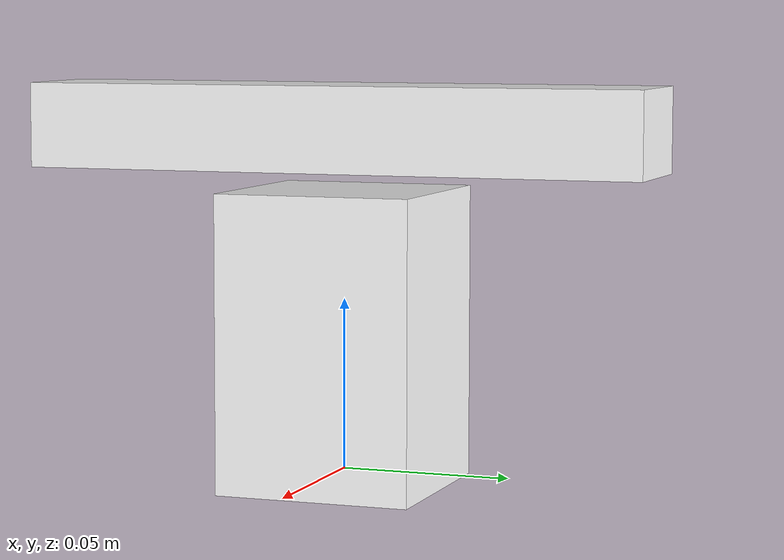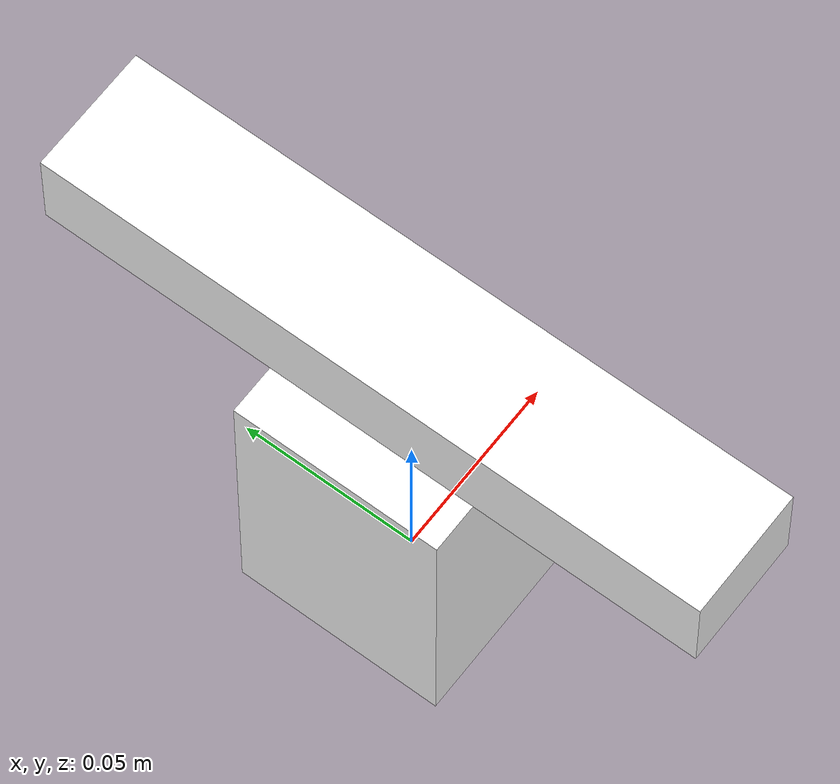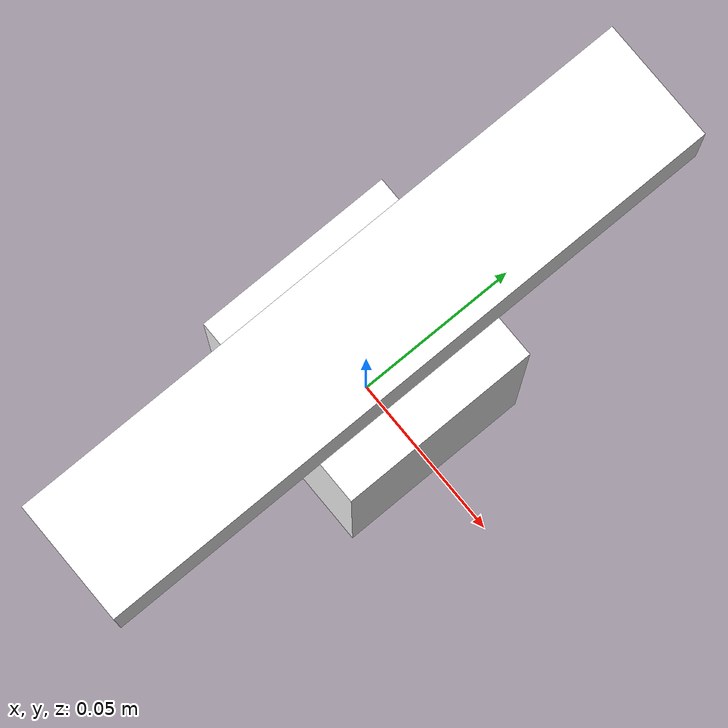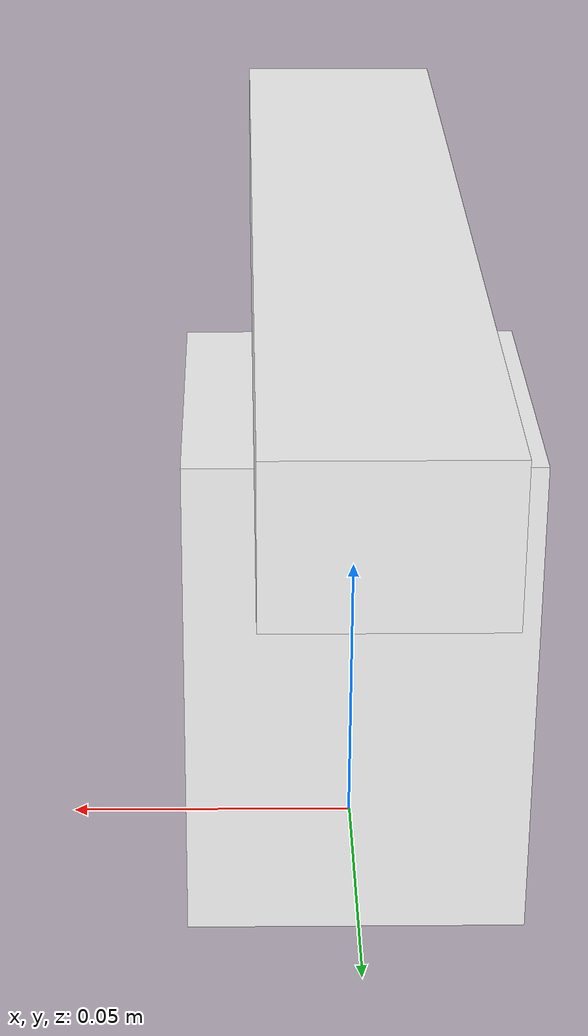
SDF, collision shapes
<?xml version='1.0'?>
<sdf version='1.6'>
  <model name='quadrotor'>
    <link name='base_link'>
      <pose frame=''>0 0 0 0 -0 0</pose>
      <inertial>
        <pose frame=''>0 0 0.071277 0 -0 0</pose>
        <mass>0.47</mass>
        <inertia>
          <ixx>0.00113126</ixx>
          <ixy>0</ixy>
          <ixz>0</ixz>
          <iyy>0.00058127</iyy>
          <iyz>0</iyz>
          <izz>0.00075283</izz>
        </inertia>
      </inertial>
      <self_collide>0</self_collide>
      <kinematic>0</kinematic>
      <velocity_decay/>
      <sensor name='camera' type='depth'>
        <update_rate>20</update_rate>
        <camera name='__default__'>
          <horizontal_fov>1.09607</horizontal_fov>
          <image>
            <format>R8G8B8</format>
            <width>640</width>
            <height>480</height>
          </image>
          <clip>
            <near>0.5</near>
            <far>9</far>
          </clip>
        </camera>
        <plugin name='camera_camera_controller' filename='libgazebo_ros_openni_kinect.so'>
          <alwaysOn>true</alwaysOn>
          <updateRate>20</updateRate>
          <imageTopicName>camera/rgb/image_raw</imageTopicName>
          <cameraInfoTopicName>camera/rgb/camera_info</cameraInfoTopicName>
          <depthImageTopicName>camera/depth/image_raw</depthImageTopicName>
          <depthImageCameraInfoTopicName>camera/depth/camera_info</depthImageCameraInfoTopicName>
          <pointCloudTopicName>camera/depth/points</pointCloudTopicName>
          <frameName>camera_depth_optical_frame</frameName>
          <distortion_k1>0.0</distortion_k1>
          <distortion_k2>0.0</distortion_k2>
          <distortion_k3>0.0</distortion_k3>
          <distortion_t1>0.0</distortion_t1>
          <distortion_t2>0.0</distortion_t2>
          <robotNamespace>/</robotNamespace>
        </plugin>
        <pose frame=''>0 0.049 0.1 0 -0 0</pose>
      </sensor>
      <sensor name='laser0' type='ray'>
        <always_on>1</always_on>
        <update_rate>40</update_rate>
        <visualize>0</visualize>
        <ray>
          <scan>
            <horizontal>
              <samples>640</samples>
              <resolution>1</resolution>
              <min_angle>-0.872665</min_angle>
              <max_angle>0.872665</max_angle>
            </horizontal>
            <vertical>
              <samples>1</samples>
              <min_angle>0</min_angle>
              <max_angle>0</max_angle>
            </vertical>
          </scan>
          <range>
            <min>0.08</min>
            <max>30</max>
            <resolution>0.01</resolution>
          </range>
        </ray>
        <plugin name='gazebo_ros_laser0_controller' filename='libgazebo_ros_laser.so'>
          <gaussianNoise>0.005</gaussianNoise>
          <alwaysOn>true</alwaysOn>
          <updateRate>40</updateRate>
          <topicName>scan</topicName>
          <frameName>laser0_frame</frameName>
          <robotNamespace>/</robotNamespace>
        </plugin>
        <pose frame=''>0 0 0.05 0 -0 0</pose>
      </sensor>
      <gravity>1</gravity>
      <visual name='base_link_fixed_joint_lump__quadrotor_center_visual'>
        <pose frame=''>0 0 0 0 -0 0</pose>
        <geometry>
          <cylinder>
            <length>0.02</length>
            <radius>0.05</radius>
          </cylinder>
        </geometry>
        <cast_shadows>1</cast_shadows>
        <transparency>0</transparency>
        <material>
          <ambient>0.9 0 0 0</ambient>
          <diffuse>1 1 1 1</diffuse>
          <specular>0 0 0 1</specular>
          <emissive>0 0 0 1</emissive>
          <script>
            <name>ModelPreview_1::base_link::base_link_fixed_joint_lump__quadrotor_center_visual_MATERIAL_</name>
          </script>
          <shader type='vertex'>
            <normal_map>__default__</normal_map>
          </shader>
        </material>
      </visual>
      <visual name='base_link_fixed_joint_lump__quadrotor_x_arms_visual_1'>
        <pose frame=''>0 0 0 3.14159 1.57079 3.14159</pose>
        <geometry>
          <cylinder>
            <length>0.66</length>
            <radius>0.006</radius>
          </cylinder>
        </geometry>
        <cast_shadows>1</cast_shadows>
        <transparency>0</transparency>
        <material>
          <shader type='vertex'>
            <normal_map>__default__</normal_map>
          </shader>
        </material>
      </visual>
      <visual name='base_link_fixed_joint_lump__quadrotor_y_arms_visual_2'>
        <pose frame=''>0 0 0 -3.13202 1.57079 -1.56132</pose>
        <geometry>
          <cylinder>
            <length>0.66</length>
            <radius>0.006</radius>
          </cylinder>
        </geometry>
        <cast_shadows>1</cast_shadows>
        <transparency>0</transparency>
        <material>
          <shader type='vertex'>
            <normal_map>__default__</normal_map>
          </shader>
        </material>
      </visual>
      <visual name='base_link_fixed_joint_lump__motor_pos_x_visual_3'>
        <pose frame=''>0.33 0 0.006 0 -0 0</pose>
        <geometry>
          <cylinder>
            <length>0.024</length>
            <radius>0.006</radius>
          </cylinder>
        </geometry>
        <cast_shadows>1</cast_shadows>
        <transparency>0</transparency>
        <material>
          <shader type='vertex'>
            <normal_map>__default__</normal_map>
          </shader>
        </material>
      </visual>
      <visual name='base_link_fixed_joint_lump__prop_pos_x_visual_4'>
        <pose frame=''>0.33 0 0.02 0 -0 0</pose>
        <geometry>
          <cylinder>
            <length>0.01</length>
            <radius>0.1</radius>
          </cylinder>
        </geometry>
        <cast_shadows>1</cast_shadows>
        <transparency>0</transparency>
        <material>
          <shader type='vertex'>
            <normal_map>__default__</normal_map>
          </shader>
        </material>
      </visual>
      <visual name='base_link_fixed_joint_lump__prop_neg_x_visual_6'>
        <pose frame=''>-0.33 0 0.02 0 -0 0</pose>
        <geometry>
          <cylinder>
            <length>0.01</length>
            <radius>0.1</radius>
          </cylinder>
        </geometry>
        <cast_shadows>1</cast_shadows>
        <transparency>0</transparency>
        <material>
          <shader type='vertex'>
            <normal_map>__default__</normal_map>
          </shader>
        </material>
      </visual>
      <visual name='base_link_fixed_joint_lump__motor_neg_x_visual_5'>
        <pose frame=''>-0.33 0 0.006 0 -0 0</pose>
        <geometry>
          <cylinder>
            <length>0.024</length>
            <radius>0.006</radius>
          </cylinder>
        </geometry>
        <cast_shadows>1</cast_shadows>
        <transparency>0</transparency>
        <material>
          <shader type='vertex'>
            <normal_map>__default__</normal_map>
          </shader>
        </material>
      </visual>
      <visual name='base_link_fixed_joint_lump__motor_pos_y_visual_7'>
        <pose frame=''>0 0.33 0.006 0 -0 0</pose>
        <geometry>
          <cylinder>
            <length>0.024</length>
            <radius>0.006</radius>
          </cylinder>
        </geometry>
        <cast_shadows>1</cast_shadows>
        <transparency>0</transparency>
        <material>
          <shader type='vertex'>
            <normal_map>__default__</normal_map>
          </shader>
        </material>
      </visual>
      <visual name='base_link_fixed_joint_lump__motor_neg_y_visual_9'>
        <pose frame=''>0 -0.33 0.006 0 -0 0</pose>
        <geometry>
          <cylinder>
            <length>0.024</length>
            <radius>0.006</radius>
          </cylinder>
        </geometry>
        <cast_shadows>1</cast_shadows>
        <transparency>0</transparency>
        <material>
          <shader type='vertex'>
            <normal_map>__default__</normal_map>
          </shader>
        </material>
      </visual>
      <visual name='base_link_fixed_joint_lump__prop_pos_y_visual_8'>
        <pose frame=''>0 0.33 0.02 0 -0 0</pose>
        <geometry>
          <cylinder>
            <length>0.01</length>
            <radius>0.1</radius>
          </cylinder>
        </geometry>
        <cast_shadows>1</cast_shadows>
        <transparency>0</transparency>
        <material>
          <shader type='vertex'>
            <normal_map>__default__</normal_map>
          </shader>
        </material>
      </visual>
      <visual name='base_link_fixed_joint_lump__prop_neg_y_visual_10'>
        <pose frame=''>0 -0.33 0.02 0 -0 0</pose>
        <geometry>
          <cylinder>
            <length>0.01</length>
            <radius>0.1</radius>
          </cylinder>
        </geometry>
        <cast_shadows>1</cast_shadows>
        <transparency>0</transparency>
        <material>
          <shader type='vertex'>
            <normal_map>__default__</normal_map>
          </shader>
        </material>
      </visual>
      <visual name='base_link_fixed_joint_lump__camera_link_visual_11'>
        <pose frame=''>0 0 0.1 0 -0 0</pose>
        <geometry>
          <mesh>
            <scale>1 1 1</scale>
            <uri>/opt/ros/kinetic/share/hector_sensors_description/meshes/asus_camera/asus_camera_simple.dae</uri>
          </mesh>
        </geometry>
        <cast_shadows>1</cast_shadows>
        <transparency>0</transparency>
        <material>
          <shader type='vertex'>
            <normal_map>__default__</normal_map>
          </shader>
        </material>
      </visual>
      <visual name='base_link_fixed_joint_lump__laser0_frame_visual_12'>
        <pose frame=''>0 0 0.05 0 -0 0</pose>
        <geometry>
          <mesh>
            <scale>1 1 1</scale>
            <uri>/opt/ros/kinetic/share/hector_sensors_description/meshes/hokuyo_utm30lx/hokuyo_utm_30lx.dae</uri>
          </mesh>
        </geometry>
        <material>
          <script>
            <uri>__default__</uri>
            <name>__default__</name>
          </script>
          <shader type='vertex'>
            <normal_map>__default__</normal_map>
          </shader>
        </material>
        <cast_shadows>1</cast_shadows>
        <transparency>0</transparency>
      </visual>
      <collision name='base_link_fixed_joint_lump__collision_collision'>
        <laser_retro>0</laser_retro>
        <max_contacts>10</max_contacts>
        <pose frame=''>0 0 0 0 -0 0</pose>
        <geometry>
          <sphere>
            <radius>0.0001</radius>
          </sphere>
        </geometry>
        <surface>
          <friction>
            <ode>
              <mu>1</mu>
              <mu2>1</mu2>
              <fdir1>0 0 0</fdir1>
              <slip1>0</slip1>
              <slip2>0</slip2>
            </ode>
            <torsional>
              <coefficient>1</coefficient>
              <patch_radius>0</patch_radius>
              <surface_radius>0</surface_radius>
              <use_patch_radius>1</use_patch_radius>
              <ode>
                <slip>0</slip>
              </ode>
            </torsional>
          </friction>
          <bounce>
            <restitution_coefficient>0</restitution_coefficient>
            <threshold>1e+06</threshold>
          </bounce>
          <contact>
            <collide_without_contact>0</collide_without_contact>
            <collide_without_contact_bitmask>1</collide_without_contact_bitmask>
            <collide_bitmask>1</collide_bitmask>
            <ode>
              <soft_cfm>0</soft_cfm>
              <soft_erp>0.2</soft_erp>
              <kp>1e+13</kp>
              <kd>1</kd>
              <max_vel>0.01</max_vel>
              <min_depth>0</min_depth>
            </ode>
            <bullet>
              <split_impulse>1</split_impulse>
              <split_impulse_penetration_threshold>-0.01</split_impulse_penetration_threshold>
              <soft_cfm>0</soft_cfm>
              <soft_erp>0.2</soft_erp>
              <kp>1e+13</kp>
              <kd>1</kd>
            </bullet>
          </contact>
        </surface>
      </collision>
      <collision name='base_link_fixed_joint_lump__camera_link_collision_1'>
        <laser_retro>0</laser_retro>
        <max_contacts>10</max_contacts>
        <pose frame=''>0 0 0.1 0 -0 0</pose>
        <geometry>
          <box>
            <size>0.035 0.185 0.025</size>
          </box>
        </geometry>
        <surface>
          <friction>
            <ode>
              <mu>1</mu>
              <mu2>1</mu2>
              <fdir1>0 0 0</fdir1>
              <slip1>0</slip1>
              <slip2>0</slip2>
            </ode>
            <torsional>
              <coefficient>1</coefficient>
              <patch_radius>0</patch_radius>
              <surface_radius>0</surface_radius>
              <use_patch_radius>1</use_patch_radius>
              <ode>
                <slip>0</slip>
              </ode>
            </torsional>
          </friction>
          <bounce>
            <restitution_coefficient>0</restitution_coefficient>
            <threshold>1e+06</threshold>
          </bounce>
          <contact>
            <collide_without_contact>0</collide_without_contact>
            <collide_without_contact_bitmask>1</collide_without_contact_bitmask>
            <collide_bitmask>1</collide_bitmask>
            <ode>
              <soft_cfm>0</soft_cfm>
              <soft_erp>0.2</soft_erp>
              <kp>1e+13</kp>
              <kd>1</kd>
              <max_vel>0.01</max_vel>
              <min_depth>0</min_depth>
            </ode>
            <bullet>
              <split_impulse>1</split_impulse>
              <split_impulse_penetration_threshold>-0.01</split_impulse_penetration_threshold>
              <soft_cfm>0</soft_cfm>
              <soft_erp>0.2</soft_erp>
              <kp>1e+13</kp>
              <kd>1</kd>
            </bullet>
          </contact>
        </surface>
      </collision>
      <collision name='base_link_fixed_joint_lump__laser0_frame_collision_2'>
        <laser_retro>0</laser_retro>
        <max_contacts>10</max_contacts>
        <pose frame=''>0 0 0.0385 0 -0 0</pose>
        <geometry>
          <box>
            <size>0.058 0.058 0.087</size>
          </box>
        </geometry>
        <surface>
          <friction>
            <ode>
              <mu>1</mu>
              <mu2>1</mu2>
              <fdir1>0 0 0</fdir1>
              <slip1>0</slip1>
              <slip2>0</slip2>
            </ode>
            <torsional>
              <coefficient>1</coefficient>
              <patch_radius>0</patch_radius>
              <surface_radius>0</surface_radius>
              <use_patch_radius>1</use_patch_radius>
              <ode>
                <slip>0</slip>
              </ode>
            </torsional>
          </friction>
          <bounce>
            <restitution_coefficient>0</restitution_coefficient>
            <threshold>1e+06</threshold>
          </bounce>
          <contact>
            <collide_without_contact>0</collide_without_contact>
            <collide_without_contact_bitmask>1</collide_without_contact_bitmask>
            <collide_bitmask>1</collide_bitmask>
            <ode>
              <soft_cfm>0</soft_cfm>
              <soft_erp>0.2</soft_erp>
              <kp>1e+13</kp>
              <kd>1</kd>
              <max_vel>0.01</max_vel>
              <min_depth>0</min_depth>
            </ode>
            <bullet>
              <split_impulse>1</split_impulse>
              <split_impulse_penetration_threshold>-0.01</split_impulse_penetration_threshold>
              <soft_cfm>0</soft_cfm>
              <soft_erp>0.2</soft_erp>
              <kp>1e+13</kp>
              <kd>1</kd>
            </bullet>
          </contact>
        </surface>
      </collision>
    </link>
    <static>0</static>
    <allow_auto_disable>1</allow_auto_disable>
  </model>
</sdf>
